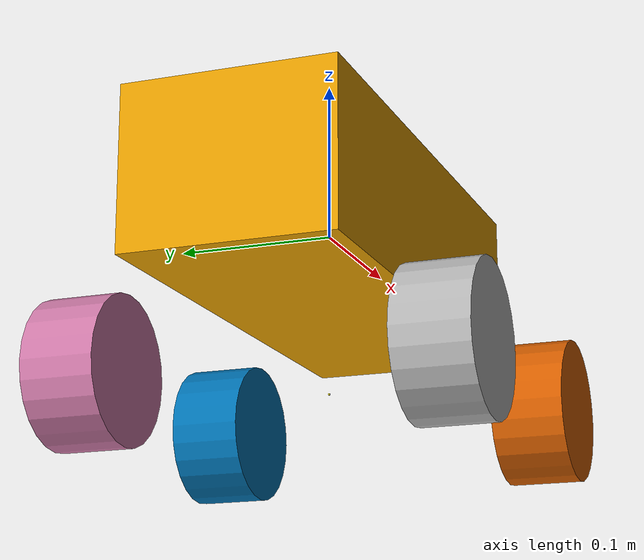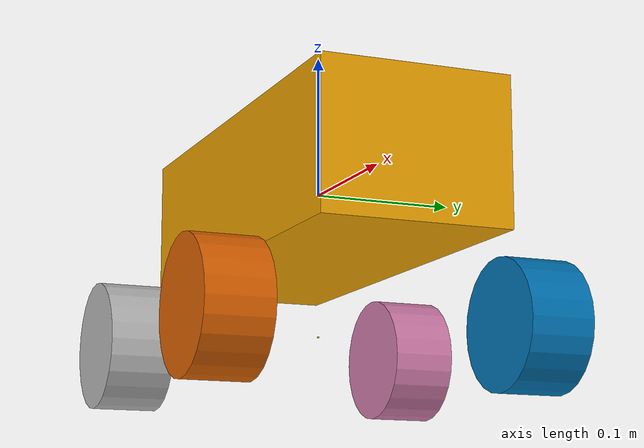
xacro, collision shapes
<?xml version="1.0"?>
<!-- 화재 대응 LIMO Pro 조립. 모듈마다 xacro 하나, 장착 위치는 여기 한 곳에만 둔다.
     열화상·레이더·노즐(팬·틸트)은 배치가 정해지면 모듈 xacro 를 더하고 여기서 부른다.
     xacro limo_fire.urdf.xacro platform:=real camera_pitch:=0.0 camera_driver_tf:=false -->
<robot name="limo_fire" xmlns:xacro="http://ros.org/wiki/xacro">
  <!-- real: 실물 LIMO, webots: 교수님 Webots 모델(webots_ros2_limo LimoFourDiff.proto). 둘이 다른 장착 위치만 여기서 고른다 -->
  <xacro:arg name="platform" default="real"/>
  <!-- 카메라 마운트 틸트(라디안, 아래로 숙이면 +). 손으로 고정하는 마운트라 관절이 아니라 인자로 받는다 -->
  <xacro:arg name="camera_pitch" default="0.0"/>
  <!-- true: camera_link 아래 color·depth 프레임은 카메라 드라이버가 낸다 (실물 Orbbec 드라이버, Webots limo_sensors 플러그인 둘 다) -->
  <xacro:arg name="camera_driver_tf" default="false"/>

  <xacro:include filename="$(find limo_fire_description)/urdf/limo_pro_base.xacro"/>
  <xacro:include filename="$(find limo_fire_description)/urdf/orbbec_dabai.xacro"/>
  <xacro:include filename="$(find limo_fire_description)/urdf/ultrasonic.xacro"/>
  <xacro:include filename="$(find limo_fire_description)/urdf/webots_control.xacro"/>

  <xacro:limo_pro_base/>

  <xacro:property name="camera_xyz" value="${dict(real='0.15 -0.005 0.0431', webots='0.096 0.015 0.03')['$(arg platform)']}"/>
  <xacro:orbbec_dabai parent="base_link" name="camera" xyz="${camera_xyz}"
                      pitch="$(arg camera_pitch)" driver_tf="$(arg camera_driver_tf)"/>

  <xacro:ultrasonic parent="base_link" name="ultrasonic_front_left" xyz="0.18 0.025 -0.06" yaw="${20*pi/180}" pitch="${-5*pi/180}"/>
  <xacro:ultrasonic parent="base_link" name="ultrasonic_front_right" xyz="0.18 -0.025 -0.06" yaw="${-20*pi/180}" pitch="${-5*pi/180}"/>

  <!-- Webots 바퀴 구동 (webots_control.xacro) -->
  <xacro:if value="${'$(arg platform)' == 'webots'}">
    <xacro:webots_control/>
  </xacro:if>
</robot>

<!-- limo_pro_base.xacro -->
<robot xmlns:xacro="http://ros.org/wiki/xacro">
  <xacro:include filename="$(find limo_description)/urdf/limo_xacro.xacro" />

  <xacro:property name="M_PI" value="3.14159265"/>
  <xacro:property name="base_x_size" value="0.322" />
  <xacro:property name="base_y_size" value="0.13" />
  <xacro:property name="base_z_size" value="0.1" />
  <xacro:property name="wheelbase" value="0.2"/>
  <xacro:property name="track" value="0.172"/>
  <xacro:property name="wheel_vertical_offset" value="-0.10" />
  <xacro:property name="base_mass" value="2.1557"/>
  <xacro:property name="wheel_length" value="0.045" />
  <xacro:property name="wheel_radius" value="0.045" />

  <xacro:macro name="limo_pro_base">
    <link name="base_link">
      <visual>
        <origin xyz="0 0 -0.15" rpy="0 0 1.57" />
        <geometry><mesh filename="file://$(find limo_description)/meshes/limo_base.dae" scale="1 1 1"/></geometry>
      </visual>
      <collision>
        <origin xyz="0 0 0" rpy="0 0 0" />
        <geometry><box size="${base_x_size} ${base_y_size} ${base_z_size}"/></geometry>
      </collision>
    </link>
    <link name="inertial_link">
      <inertial>
        <origin xyz="0 0 0" />
        <mass value="${base_mass}" />
        <inertia ixx="0.24" ixy="0" ixz="0" iyy="0.96" iyz="0" izz="0.96" />
      </inertial>
    </link>
    <joint name="inertial_joint" type="fixed">
      <origin xyz="0 0 0" rpy="0 0 0" />
      <parent link="base_link" />
      <child link="inertial_link" />
    </joint>

    <xacro:limo_laser parent_prefix="base_link" frame_prefix="laser">
      <origin xyz="0.103 0 -0.034" rpy="0 0 0"/>
    </xacro:limo_laser>
    <xacro:limo_imu parent_prefix="base_link" frame_prefix="imu">
      <origin xyz="0 0 -0.1" rpy="0 0 0"/>
    </xacro:limo_imu>

    <xacro:limo_wheel parent_prefix="base_link" wheel_prefix="front_left" reflect="1">
      <origin xyz="${wheelbase/2} ${track/2} ${wheel_vertical_offset}" rpy="0 0 0" />
    </xacro:limo_wheel>
    <xacro:limo_wheel parent_prefix="base_link" wheel_prefix="front_right" reflect="-1">
      <origin xyz="${wheelbase/2} ${-track/2} ${wheel_vertical_offset}" rpy="${M_PI} 0 0" />
    </xacro:limo_wheel>
    <xacro:limo_wheel parent_prefix="base_link" wheel_prefix="rear_left" reflect="1">
      <origin xyz="${-wheelbase/2} ${track/2} ${wheel_vertical_offset}" rpy="0 0 0" />
    </xacro:limo_wheel>
    <xacro:limo_wheel parent_prefix="base_link" wheel_prefix="rear_right" reflect="-1">
      <origin xyz="${-wheelbase/2} ${-track/2} ${wheel_vertical_offset}" rpy="${M_PI} 0 0" />
    </xacro:limo_wheel>
  </xacro:macro>
</robot>

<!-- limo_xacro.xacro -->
<robot name="limo_xacro" xmlns:xacro="http://ros.org/wiki/xacro">
    <xacro:macro name="limo_wheel" params="parent_prefix wheel_prefix reflect *joint_pose">
        <link name="${wheel_prefix}_wheel_link">
            <inertial>
                <origin xyz="0 0 0" />
                <mass value="0.5" />
                <inertia ixx="0.01055" ixy="0" ixz="0" iyy="0.00075" iyz="0" izz="0.01055" />
            </inertial>
            <visual>
                <origin xyz="0 0 0" rpy="0 0 0" />
                <geometry>
                    <mesh filename="file://$(find limo_description)/meshes/limo_wheel.dae" />
                </geometry>
            </visual>
            <collision>
              <origin xyz="0 ${wheel_length/2} 0" rpy="1.57 0 0" />
              <geometry>
                  <cylinder length="${wheel_length}" radius="${wheel_radius}" />
              </geometry>
            </collision>
        </link>

        <joint name="${wheel_prefix}_wheel" type="continuous">
            <parent link="${parent_prefix}"/>
            <child link="${wheel_prefix}_wheel_link"/>
            <xacro:insert_block name="joint_pose"/>
            <axis xyz="0 ${reflect*1} 0"/>
        </joint>
    </xacro:macro>

    <xacro:macro name="limo_laser" params="parent_prefix frame_prefix *joint_pose">
        <link name='${frame_prefix}_link'>
            <pose>0 0 0 0 0 0</pose>
            <inertial>
                <mass value="0.1"/>
                <origin xyz="0.0 0 0" rpy="0 0 0"/>
                <inertia
                    ixx="1e-6" ixy="0" ixz="0"
                    iyy="1e-6" iyz="0"
                    izz="1e-6"
                />
            </inertial>
            <visual name='laser_visual'>
                <origin xyz="0 0 0" rpy="0 0 0"/>
                <geometry>
                    <cylinder radius="0.02" length="0.01"/>
                </geometry>
                <material name='laser_material'>
                    <ambient>0.1 0.1 0.1 1</ambient>
                    <diffuse>0.1 0.1 0.2 1</diffuse>
                    <specular>0 0 0 0</specular>
                    <emissive>0 0 0 1</emissive>
                </material>
            </visual>
            <collision name='laser_collision'>
                <origin xyz="0 0 0" rpy="0 0 0"/>
                <geometry>
                    <cylinder radius="0.032" length="0.016"/>
                </geometry>
            </collision>
        </link>
        <joint type="fixed" name="laser_joint">
            <xacro:insert_block name="joint_pose"/>
            <child link="${frame_prefix}_link"/>
            <parent link="${parent_prefix}"/>
        </joint>
        <gazebo reference="${frame_prefix}_link">
            <material>Gazebo/Yellow</material>
        </gazebo>
    </xacro:macro>

    <xacro:macro name="limo_imu" params="parent_prefix frame_prefix  *joint_pose">
        <link name='${frame_prefix}_link'>
            <pose>0 0 0 0 0 0</pose>
            <inertial>
                <mass value="0.01"/>
                <origin xyz="0.0 0 0" rpy="0 0 0"/>
                <inertia
                    ixx="1e-7" ixy="0" ixz="0"
                    iyy="1e-7" iyz="0"
                    izz="1e-7"
                />
            </inertial>
            <visual name='imu_visual'>
                <origin xyz="0 0 0" rpy="0 0 0"/>
                <geometry>
                    <box size="0.001 0.001 0.001"/>
                </geometry>
                <material name='imu_material'>
                    <ambient>0.1 0.1 0.1 1</ambient>
                    <diffuse>0.1 0.1 0.2 1</diffuse>
                    <specular>0 0 0 0</specular>
                    <emissive>0 0 0 1</emissive>
                </material>
            </visual>
            <collision name='imu_collision'>
                <origin xyz="0 0 0" rpy="0 0 0"/>
                <geometry>
                    <box size="0.001 0.001 0.001"/>
                </geometry>
            </collision>
        </link>
        <joint type="fixed" name="imu_joint">
            <xacro:insert_block name="joint_pose"/>
            <child link="${frame_prefix}_link"/>
            <parent link="${parent_prefix}"/>
        </joint>
        <gazebo reference="${frame_prefix}_link">
            <material>Gazebo/Yellow</material>
        </gazebo>
    </xacro:macro>
</robot>

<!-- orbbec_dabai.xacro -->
<robot xmlns:xacro="http://ros.org/wiki/xacro">
  <xacro:macro name="optical_frame" params="parent name">
    <link name="${name}_optical_frame"/>
    <joint name="${name}_optical_joint" type="fixed">
      <origin xyz="0 0 0" rpy="${-pi/2} 0 ${-pi/2}"/>
      <parent link="${parent}"/>
      <child link="${name}_optical_frame"/>
    </joint>
  </xacro:macro>

  <xacro:macro name="orbbec_dabai" params="parent name xyz pitch driver_tf">
    <link name="${name}_link"/>
    <joint name="${name}_joint" type="fixed">
      <origin xyz="${xyz}" rpy="0 ${pitch} 0"/>
      <parent link="${parent}"/>
      <child link="${name}_link"/>
    </joint>

    <xacro:unless value="${driver_tf}">
      <link name="${name}_color_frame"/>
      <joint name="${name}_color_joint" type="fixed">
        <origin xyz="0.00015 -0.03 0.00002" rpy="0 0 0"/>
        <parent link="${name}_link"/>
        <child link="${name}_color_frame"/>
      </joint>
      <xacro:optical_frame parent="${name}_color_frame" name="${name}_color"/>
      <link name="${name}_depth_frame"/>
      <joint name="${name}_depth_joint" type="fixed">
        <origin xyz="0 0 0" rpy="0 0 0"/>
        <parent link="${name}_link"/>
        <child link="${name}_depth_frame"/>
      </joint>
      <xacro:optical_frame parent="${name}_depth_frame" name="${name}_depth"/>
    </xacro:unless>
  </xacro:macro>
</robot>

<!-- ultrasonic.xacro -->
<robot xmlns:xacro="http://ros.org/wiki/xacro">
  <xacro:macro name="ultrasonic" params="parent name xyz yaw pitch:=0">
    <link name="${name}_link"/>
    <joint name="${name}_joint" type="fixed">
      <origin xyz="${xyz}" rpy="0 ${pitch} ${yaw}"/>
      <parent link="${parent}"/>
      <child link="${name}_link"/>
    </joint>
  </xacro:macro>
</robot>
